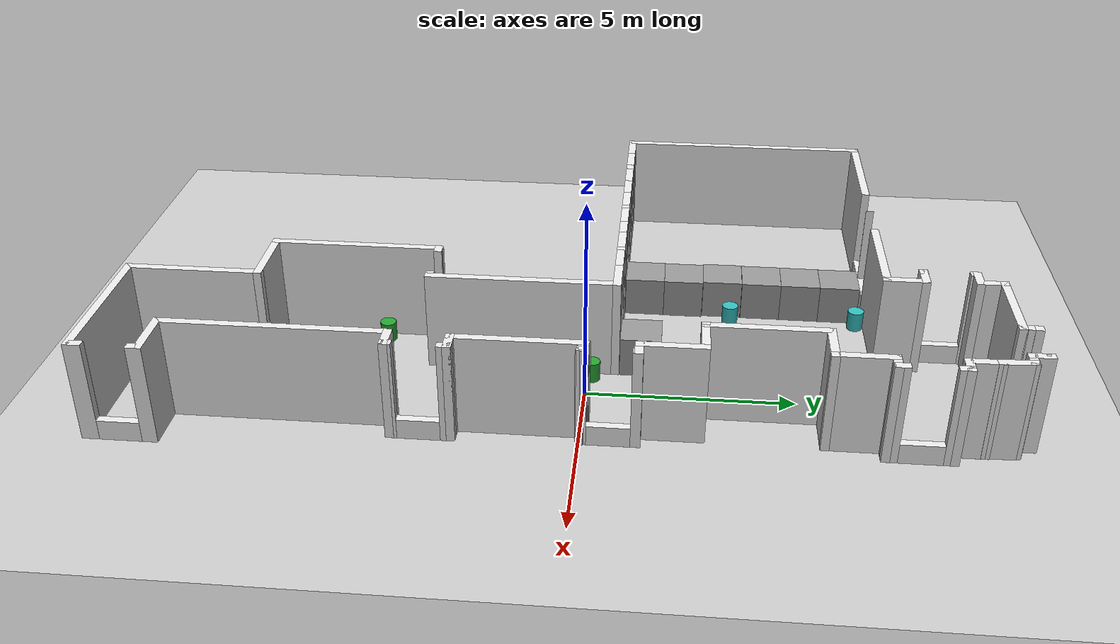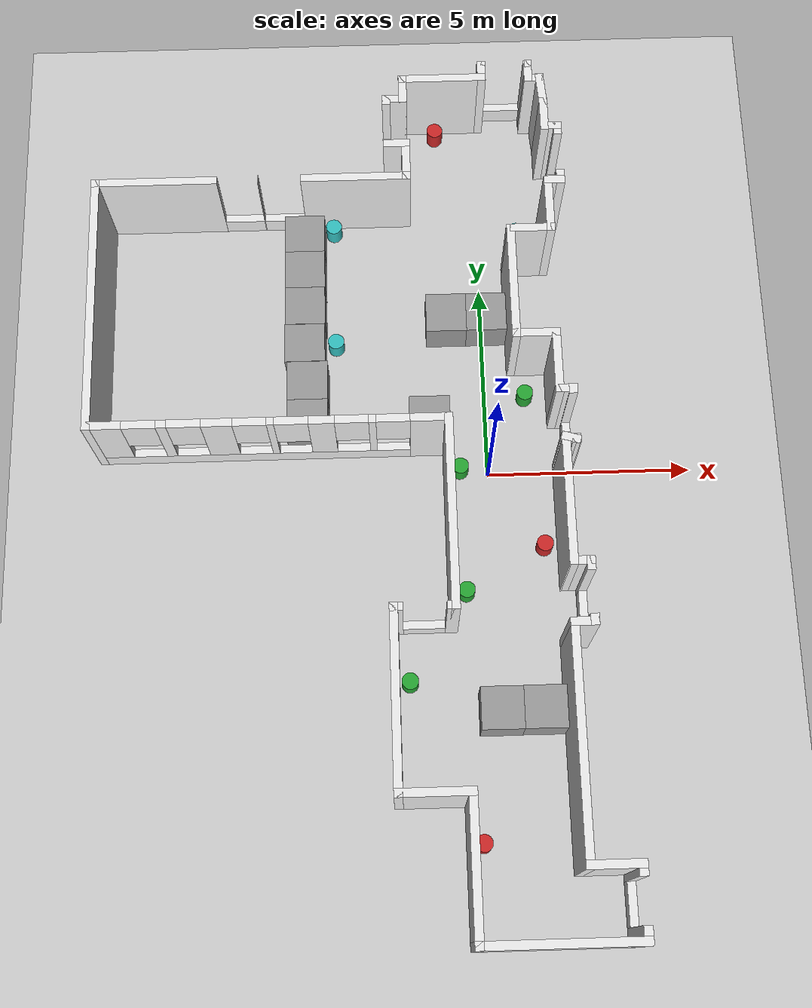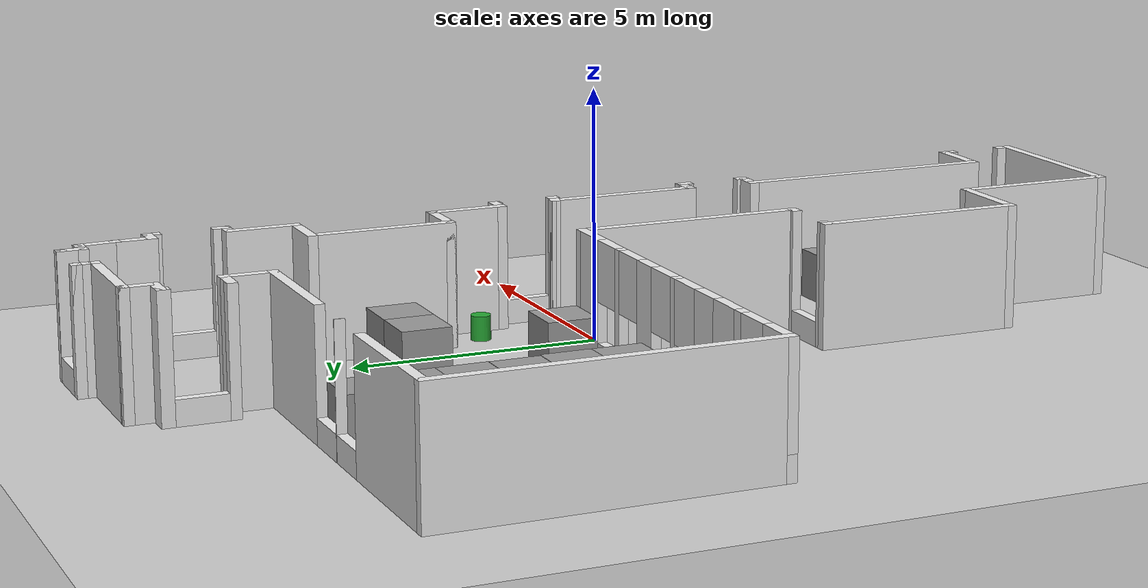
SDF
<sdf version="1.4">
 <world name="default">
  <light name="sun" type="directional">
   <pose>0 0 10 0 -0 0</pose>
   <diffuse>0.8 0.8 0.8 1</diffuse>
   <specular>0.2 0.2 0.2 1</specular>
   <attenuation>
    <range>1000</range>
    <constant>0.9</constant>
    <linear>0.01</linear>
    <quadratic>0.001</quadratic>
   </attenuation>
   <direction>-0.5 0.1 -0.9</direction>
  </light>
  <model name="ground_plane">
   <static>1</static>
   <link name="link">
    <collision name="collision">
     <geometry><plane><normal>0 0 1</normal><size>100 100</size></plane></geometry>
     <surface><friction><ode><mu>100</mu><mu2>50</mu2></ode></friction></surface>
    </collision>
    <visual name="visual">
     <cast_shadows>0</cast_shadows>
     <geometry><plane><normal>0 0 1</normal><size>100 100</size></plane></geometry>
     <material>
      <script><uri>file://media/materials/scripts/gazebo.material</uri><name>Gazebo/Grey</name></script>
     </material>
    </visual>
    <velocity_decay><linear>0</linear><angular>0</angular></velocity_decay>
   </link>
  </model>
  <model name="scene2">
   <pose>0.10113 -0.00426 0 0 -0 0</pose>
   <link name="Wall_18">
    <collision name="Wall_18_Collision">
     <geometry><box><size>0.903575 0.2 2.5</size></box></geometry>
     <pose>0 0 1.25 0 -0 0</pose>
    </collision>
    <visual name="Wall_18_Visual">
     <pose>0 0 1.25 0 -0 0</pose>
     <geometry><box><size>0.903575 0.2 2.5</size></box></geometry>
     <material>
      <script><uri>file://media/materials/scripts/gazebo.material</uri><name>Gazebo/White</name></script>
     </material>
    </visual>
    <velocity_decay><linear>0</linear><angular>0</angular></velocity_decay>
    <pose>1.57666 8.69449 0 0 0 -1.5708</pose>
   </link>
   <link name="Wall_19">
    <collision name="Wall_19_Collision">
     <geometry><box><size>0.516609 0.2 2.5</size></box></geometry>
     <pose>0 0 1.25 0 -0 0</pose>
    </collision>
    <visual name="Wall_19_Visual">
     <pose>0 0 1.25 0 -0 0</pose>
     <geometry><box><size>0.516609 0.2 2.5</size></box></geometry>
     <material>
      <script><uri>file://media/materials/scripts/gazebo.material</uri><name>Gazebo/White</name></script>
     </material>
    </visual>
    <velocity_decay><linear>0</linear><angular>0</angular></velocity_decay>
    <pose>1.73497 8.34271 0 0 -0 0</pose>
   </link>
   <link name="Wall_20">
    <pose>1.89327 7.58636 0 0 0 -1.5708</pose>
    <visual name="Wall_20_Visual_0">
     <pose>-0.68138 0 1.25 0 -0 0</pose>
     <geometry><box><size>0.34993 0.2 2.5</size></box></geometry>
     <material>
      <script><uri>file://media/materials/scripts/gazebo.material</uri><name>Gazebo/White</name></script>
     </material>
    </visual>
    <collision name="Wall_20_Collision_0">
     <geometry><box><size>0.34993 0.2 2.5</size></box></geometry>
     <pose>-0.68138 0 1.25 0 -0 0</pose>
    </collision>
    <visual name="Wall_20_Visual_1">
     <pose>0.674965 0 1.25 0 -0 0</pose>
     <geometry><box><size>0.36276 0.2 2.5</size></box></geometry>
     <material>
      <script><uri>file://media/materials/scripts/gazebo.material</uri><name>Gazebo/White</name></script>
     </material>
    </visual>
    <collision name="Wall_20_Collision_1">
     <geometry><box><size>0.36276 0.2 2.5</size></box></geometry>
     <pose>0.674965 0 1.25 0 -0 0</pose>
    </collision>
    <visual name="Wall_20_Visual_2">
     <pose>-0.006415 0 0.25 0 -0 0</pose>
     <geometry><box><size>1 0.2 0.5</size></box></geometry>
     <material>
      <script><uri>file://media/materials/scripts/gazebo.material</uri><name>Gazebo/White</name></script>
     </material>
    </visual>
    <collision name="Wall_20_Collision_2">
     <geometry><box><size>1 0.2 0.5</size></box></geometry>
     <pose>-0.006415 0 0.25 0 -0 0</pose>
    </collision>
    <velocity_decay><linear>0</linear><angular>0</angular></velocity_decay>
   </link>
   <link name="Wall_21">
    <collision name="Wall_21_Collision">
     <geometry><box><size>0.516609 0.2 2.5</size></box></geometry>
     <pose>0 0 1.25 0 -0 0</pose>
    </collision>
    <visual name="Wall_21_Visual">
     <pose>0 0 1.25 0 -0 0</pose>
     <geometry><box><size>0.516609 0.2 2.5</size></box></geometry>
     <material>
      <script><uri>file://media/materials/scripts/gazebo.material</uri><name>Gazebo/White</name></script>
     </material>
    </visual>
    <velocity_decay><linear>0</linear><angular>0</angular></velocity_decay>
    <pose>1.73497 6.83002 0 0 -0 3.14159</pose>
   </link>
   <link name="Wall_22">
    <collision name="Wall_22_Collision">
     <geometry><box><size>1.50161 0.2 2.5</size></box></geometry>
     <pose>0 0 1.25 0 -0 0</pose>
    </collision>
    <visual name="Wall_22_Visual">
     <pose>0 0 1.25 0 -0 0</pose>
     <geometry><box><size>1.50161 0.2 2.5</size></box></geometry>
     <material>
      <script><uri>file://media/materials/scripts/gazebo.material</uri><name>Gazebo/White</name></script>
     </material>
    </visual>
    <velocity_decay><linear>0</linear><angular>0</angular></velocity_decay>
    <pose>1.57666 6.17921 0 0 0 -1.5708</pose>
   </link>
   <link name="Wall_23">
    <collision name="Wall_23_Collision">
     <geometry><box><size>1.18501 0.2 2.5</size></box></geometry>
     <pose>0 0 1.25 0 -0 0</pose>
    </collision>
    <visual name="Wall_23_Visual">
     <pose>0 0 1.25 0 -0 0</pose>
     <geometry><box><size>1.18501 0.2 2.5</size></box></geometry>
     <material>
      <script><uri>file://media/materials/scripts/gazebo.material</uri><name>Gazebo/White</name></script>
     </material>
    </visual>
    <velocity_decay><linear>0</linear><angular>0</angular></velocity_decay>
    <pose>1.08416 5.52841 0 0 -0 3.14159</pose>
   </link>
   <link name="Wall_24">
    <collision name="Wall_24_Collision">
     <geometry><box><size>2.97912 0.2 2.5</size></box></geometry>
     <pose>0 0 1.25 0 -0 0</pose>
    </collision>
    <visual name="Wall_24_Visual">
     <pose>0 0 1.25 0 -0 0</pose>
     <geometry><box><size>2.97912 0.2 2.5</size></box></geometry>
     <material>
      <script><uri>file://media/materials/scripts/gazebo.material</uri><name>Gazebo/White</name></script>
     </material>
    </visual>
    <velocity_decay><linear>0</linear><angular>0</angular></velocity_decay>
    <pose>0.591659 4.13884 0 0 0 -1.5708</pose>
   </link>
   <link name="Wall_25">
    <collision name="Wall_25_Collision">
     <geometry><box><size>1.14983 0.2 2.5</size></box></geometry>
     <pose>0 0 1.25 0 -0 0</pose>
    </collision>
    <visual name="Wall_25_Visual">
     <pose>0 0 1.25 0 -0 0</pose>
     <geometry><box><size>1.14983 0.2 2.5</size></box></geometry>
     <material>
      <script><uri>file://media/materials/scripts/gazebo.material</uri><name>Gazebo/White</name></script>
     </material>
    </visual>
    <velocity_decay><linear>0</linear><angular>0</angular></velocity_decay>
    <pose>1.06657 2.74928 0 0 -0 0</pose>
   </link>
   <link name="Wall_26">
    <collision name="Wall_26_Collision">
     <geometry><box><size>1.64233 0.2 2.5</size></box></geometry>
     <pose>0 0 1.25 0 -0 0</pose>
    </collision>
    <visual name="Wall_26_Visual">
     <pose>0 0 1.25 0 -0 0</pose>
     <geometry><box><size>1.64233 0.2 2.5</size></box></geometry>
     <material>
      <script><uri>file://media/materials/scripts/gazebo.material</uri><name>Gazebo/White</name></script>
     </material>
    </visual>
    <velocity_decay><linear>0</linear><angular>0</angular></velocity_decay>
    <pose>1.54149 2.02812 0 0 0 -1.5708</pose>
   </link>
   <link name="Wall_27">
    <collision name="Wall_27_Collision">
     <geometry><box><size>0.516609 0.2 2.5</size></box></geometry>
     <pose>0 0 1.25 0 -0 0</pose>
    </collision>
    <visual name="Wall_27_Visual">
     <pose>0 0 1.25 0 -0 0</pose>
     <geometry><box><size>0.516609 0.2 2.5</size></box></geometry>
     <material>
      <script><uri>file://media/materials/scripts/gazebo.material</uri><name>Gazebo/White</name></script>
     </material>
    </visual>
    <velocity_decay><linear>0</linear><angular>0</angular></velocity_decay>
    <pose>1.69979 1.30696 0 0 -0 0</pose>
   </link>
   <link name="Wall_28">
    <pose>1.8581 0.673737 0 0 0 -1.5708</pose>
    <visual name="Wall_28_Visual_0">
     <pose>-0.617177 0 1.25 0 -0 0</pose>
     <geometry><box><size>0.232077 0.2 2.5</size></box></geometry>
     <material>
      <script><uri>file://media/materials/scripts/gazebo.material</uri><name>Gazebo/White</name></script>
     </material>
    </visual>
    <collision name="Wall_28_Collision_0">
     <geometry><box><size>0.232077 0.2 2.5</size></box></geometry>
     <pose>-0.617177 0 1.25 0 -0 0</pose>
    </collision>
    <visual name="Wall_28_Visual_1">
     <pose>0.616038 0 1.25 0 -0 0</pose>
     <geometry><box><size>0.234353 0.2 2.5</size></box></geometry>
     <material>
      <script><uri>file://media/materials/scripts/gazebo.material</uri><name>Gazebo/White</name></script>
     </material>
    </visual>
    <collision name="Wall_28_Collision_1">
     <geometry><box><size>0.234353 0.2 2.5</size></box></geometry>
     <pose>0.616038 0 1.25 0 -0 0</pose>
    </collision>
    <visual name="Wall_28_Visual_2">
     <pose>-0.001138 0 0.25 0 -0 0</pose>
     <geometry><box><size>1 0.2 0.5</size></box></geometry>
     <material>
      <script><uri>file://media/materials/scripts/gazebo.material</uri><name>Gazebo/White</name></script>
     </material>
    </visual>
    <collision name="Wall_28_Collision_2">
     <geometry><box><size>1 0.2 0.5</size></box></geometry>
     <pose>-0.001138 0 0.25 0 -0 0</pose>
    </collision>
    <velocity_decay><linear>0</linear><angular>0</angular></velocity_decay>
   </link>
   <link name="Wall_29">
    <collision name="Wall_29_Collision">
     <geometry><box><size>0.456105 0.2 2.5</size></box></geometry>
     <pose>0 0 1.25 0 -0 0</pose>
    </collision>
    <visual name="Wall_29_Visual">
     <pose>0 0 1.25 0 -0 0</pose>
     <geometry><box><size>0.456105 0.2 2.5</size></box></geometry>
     <material>
      <script><uri>file://media/materials/scripts/gazebo.material</uri><name>Gazebo/White</name></script>
     </material>
    </visual>
    <velocity_decay><linear>0</linear><angular>0</angular></velocity_decay>
    <pose>1.73497 0.075698 0 0 -0 2.86329</pose>
   </link>
   <link name="Wall_30">
    <collision name="Wall_30_Collision">
     <geometry><box><size>3.1902 0.2 2.5</size></box></geometry>
     <pose>0 0 1.25 0 -0 0</pose>
    </collision>
    <visual name="Wall_30_Visual">
     <pose>0 0 1.25 0 -0 0</pose>
     <geometry><box><size>3.1902 0.2 2.5</size></box></geometry>
     <material>
      <script><uri>file://media/materials/scripts/gazebo.material</uri><name>Gazebo/White</name></script>
     </material>
    </visual>
    <velocity_decay><linear>0</linear><angular>0</angular></velocity_decay>
    <pose>1.61184 -1.38422 0 0 0 -1.5708</pose>
   </link>
   <link name="Wall_31">
    <collision name="Wall_31_Collision">
     <geometry><box><size>0.586966 0.2 2.5</size></box></geometry>
     <pose>0 0 1.25 0 -0 0</pose>
    </collision>
    <visual name="Wall_31_Visual">
     <pose>0 0 1.25 0 -0 0</pose>
     <geometry><box><size>0.586966 0.2 2.5</size></box></geometry>
     <material>
      <script><uri>file://media/materials/scripts/gazebo.material</uri><name>Gazebo/White</name></script>
     </material>
    </visual>
    <velocity_decay><linear>0</linear><angular>0</angular></velocity_decay>
    <pose>1.80533 -2.87932 0 0 -0 0</pose>
   </link>
   <link name="Wall_32">
    <pose>1.99881 -3.58289 0 0 0 -1.5708</pose>
    <visual name="Wall_32_Visual_0">
     <pose>-0.636526 0 1.25 0 -0 0</pose>
     <geometry><box><size>0.334098 0.2 2.5</size></box></geometry>
     <material>
      <script><uri>file://media/materials/scripts/gazebo.material</uri><name>Gazebo/White</name></script>
     </material>
    </visual>
    <collision name="Wall_32_Collision_0">
     <geometry><box><size>0.334098 0.2 2.5</size></box></geometry>
     <pose>-0.636526 0 1.25 0 -0 0</pose>
    </collision>
    <visual name="Wall_32_Visual_1">
     <pose>0.667049 0 1.25 0 -0 0</pose>
     <geometry><box><size>0.273052 0.2 2.5</size></box></geometry>
     <material>
      <script><uri>file://media/materials/scripts/gazebo.material</uri><name>Gazebo/White</name></script>
     </material>
    </visual>
    <collision name="Wall_32_Collision_1">
     <geometry><box><size>0.273052 0.2 2.5</size></box></geometry>
     <pose>0.667049 0 1.25 0 -0 0</pose>
    </collision>
    <visual name="Wall_32_Visual_2">
     <pose>0.030523 0 0.25 0 -0 0</pose>
     <geometry><box><size>1 0.2 0.5</size></box></geometry>
     <material>
      <script><uri>file://media/materials/scripts/gazebo.material</uri><name>Gazebo/White</name></script>
     </material>
    </visual>
    <collision name="Wall_32_Collision_2">
     <geometry><box><size>1 0.2 0.5</size></box></geometry>
     <pose>0.030523 0 0.25 0 -0 0</pose>
    </collision>
    <velocity_decay><linear>0</linear><angular>0</angular></velocity_decay>
   </link>
   <link name="Wall_33">
    <collision name="Wall_33_Collision">
     <geometry><box><size>0.657324 0.2 2.5</size></box></geometry>
     <pose>0 0 1.25 0 -0 0</pose>
    </collision>
    <visual name="Wall_33_Visual">
     <pose>0 0 1.25 0 -0 0</pose>
     <geometry><box><size>0.657324 0.2 2.5</size></box></geometry>
     <material>
      <script><uri>file://media/materials/scripts/gazebo.material</uri><name>Gazebo/White</name></script>
     </material>
    </visual>
    <velocity_decay><linear>0</linear><angular>0</angular></velocity_decay>
    <pose>1.77015 -4.28647 0 0 -0 3.14159</pose>
   </link>
   <link name="Wall_34">
    <collision name="Wall_34_Collision">
     <geometry><box><size>5.47681 0.2 2.5</size></box></geometry>
     <pose>0 0 1.25 0 -0 0</pose>
    </collision>
    <visual name="Wall_34_Visual">
     <pose>0 0 1.25 0 -0 0</pose>
     <geometry><box><size>5.47681 0.2 2.5</size></box></geometry>
     <material>
      <script><uri>file://media/materials/scripts/gazebo.material</uri><name>Gazebo/White</name></script>
     </material>
    </visual>
    <velocity_decay><linear>0</linear><angular>0</angular></velocity_decay>
    <pose>1.54149 -6.92488 0 0 0 -1.5708</pose>
   </link>
   <link name="Wall_35">
    <collision name="Wall_35_Collision">
     <geometry><box><size>1.32572 0.2 2.5</size></box></geometry>
     <pose>0 0 1.25 0 -0 0</pose>
    </collision>
    <visual name="Wall_35_Visual">
     <pose>0 0 1.25 0 -0 0</pose>
     <geometry><box><size>1.32572 0.2 2.5</size></box></geometry>
     <material>
      <script><uri>file://media/materials/scripts/gazebo.material</uri><name>Gazebo/White</name></script>
     </material>
    </visual>
    <velocity_decay><linear>0</linear><angular>0</angular></velocity_decay>
    <pose>2.10435 -9.56328 0 0 -0 0</pose>
   </link>
   <link name="Wall_36">
    <pose>2.66721 -10.3548 0 0 0 -1.5708</pose>
    <visual name="Wall_36_Visual_0">
     <pose>-0.708642 0 1.25 0 -0 0</pose>
     <geometry><box><size>0.365756 0.2 2.5</size></box></geometry>
     <material>
      <script><uri>file://media/materials/scripts/gazebo.material</uri><name>Gazebo/White</name></script>
     </material>
    </visual>
    <collision name="Wall_36_Collision_0">
     <geometry><box><size>0.365756 0.2 2.5</size></box></geometry>
     <pose>-0.708642 0 1.25 0 -0 0</pose>
    </collision>
    <visual name="Wall_36_Visual_1">
     <pose>0.682878 0 1.25 0 -0 0</pose>
     <geometry><box><size>0.417284 0.2 2.5</size></box></geometry>
     <material>
      <script><uri>file://media/materials/scripts/gazebo.material</uri><name>Gazebo/White</name></script>
     </material>
    </visual>
    <collision name="Wall_36_Collision_1">
     <geometry><box><size>0.417284 0.2 2.5</size></box></geometry>
     <pose>0.682878 0 1.25 0 -0 0</pose>
    </collision>
    <visual name="Wall_36_Visual_2">
     <pose>-0.025764 0 0.25 0 -0 0</pose>
     <geometry><box><size>1 0.2 0.5</size></box></geometry>
     <material>
      <script><uri>file://media/materials/scripts/gazebo.material</uri><name>Gazebo/White</name></script>
     </material>
    </visual>
    <collision name="Wall_36_Collision_2">
     <geometry><box><size>1 0.2 0.5</size></box></geometry>
     <pose>-0.025764 0 0.25 0 -0 0</pose>
    </collision>
    <velocity_decay><linear>0</linear><angular>0</angular></velocity_decay>
   </link>
   <link name="Wall_37">
    <collision name="Wall_37_Collision">
     <geometry><box><size>3.75305 0.2 2.5</size></box></geometry>
     <pose>0 0 1.25 0 -0 0</pose>
    </collision>
    <visual name="Wall_37_Visual">
     <pose>0 0 1.25 0 -0 0</pose>
     <geometry><box><size>3.75305 0.2 2.5</size></box></geometry>
     <material>
      <script><uri>file://media/materials/scripts/gazebo.material</uri><name>Gazebo/White</name></script>
     </material>
    </visual>
    <velocity_decay><linear>0</linear><angular>0</angular></velocity_decay>
    <pose>0.890679 -11.1463 0 0 -0 3.14159</pose>
   </link>
   <link name="Wall_38">
    <collision name="Wall_38_Collision">
     <geometry><box><size>3.40127 0.2 2.5</size></box></geometry>
     <pose>0 0 1.25 0 -0 0</pose>
    </collision>
    <visual name="Wall_38_Visual">
     <pose>0 0 1.25 0 -0 0</pose>
     <geometry><box><size>3.40127 0.2 2.5</size></box></geometry>
     <material>
      <script><uri>file://media/materials/scripts/gazebo.material</uri><name>Gazebo/White</name></script>
     </material>
    </visual>
    <velocity_decay><linear>0</linear><angular>0</angular></velocity_decay>
    <pose>-0.885849 -9.54569 0 0 -0 1.5708</pose>
   </link>
   <link name="Wall_39">
    <collision name="Wall_39_Collision">
     <geometry><box><size>1.81822 0.2 2.5</size></box></geometry>
     <pose>0 0 1.25 0 -0 0</pose>
    </collision>
    <visual name="Wall_39_Visual">
     <pose>0 0 1.25 0 -0 0</pose>
     <geometry><box><size>1.81822 0.2 2.5</size></box></geometry>
     <material>
      <script><uri>file://media/materials/scripts/gazebo.material</uri><name>Gazebo/White</name></script>
     </material>
    </visual>
    <velocity_decay><linear>0</linear><angular>0</angular></velocity_decay>
    <pose>-1.69496 -7.94506 0 0 -0 3.14159</pose>
   </link>
   <link name="Wall_40">
    <collision name="Wall_40_Collision">
     <geometry><box><size>4.31592 0.2 2.5</size></box></geometry>
     <pose>0 0 1.25 0 -0 0</pose>
    </collision>
    <visual name="Wall_40_Visual">
     <pose>0 0 1.25 0 -0 0</pose>
     <geometry><box><size>4.31592 0.2 2.5</size></box></geometry>
     <material>
      <script><uri>file://media/materials/scripts/gazebo.material</uri><name>Gazebo/White</name></script>
     </material>
    </visual>
    <velocity_decay><linear>0</linear><angular>0</angular></velocity_decay>
    <pose>-2.50407 -5.8871 0 0 -0 1.5708</pose>
   </link>
   <link name="Wall_41">
    <pose>-1.8005 -3.82914 0 0 -0 0</pose>
    <visual name="Wall_41_Visual_0">
     <pose>-0.64898 0 1.25 0 -0 0</pose>
     <geometry><box><size>0.30919 0.2 2.5</size></box></geometry>
     <material>
      <script><uri>file://media/materials/scripts/gazebo.material</uri><name>Gazebo/White</name></script>
     </material>
    </visual>
    <collision name="Wall_41_Collision_0">
     <geometry><box><size>0.30919 0.2 2.5</size></box></geometry>
     <pose>-0.64898 0 1.25 0 -0 0</pose>
    </collision>
    <visual name="Wall_41_Visual_1">
     <pose>0.654595 0 1.25 0 -0 0</pose>
     <geometry><box><size>0.29796 0.2 2.5</size></box></geometry>
     <material>
      <script><uri>file://media/materials/scripts/gazebo.material</uri><name>Gazebo/White</name></script>
     </material>
    </visual>
    <collision name="Wall_41_Collision_1">
     <geometry><box><size>0.29796 0.2 2.5</size></box></geometry>
     <pose>0.654595 0 1.25 0 -0 0</pose>
    </collision>
    <visual name="Wall_41_Visual_2">
     <pose>0.005615 0 0.25 0 -0 0</pose>
     <geometry><box><size>1 0.2 0.5</size></box></geometry>
     <material>
      <script><uri>file://media/materials/scripts/gazebo.material</uri><name>Gazebo/White</name></script>
     </material>
    </visual>
    <collision name="Wall_41_Collision_2">
     <geometry><box><size>1 0.2 0.5</size></box></geometry>
     <pose>0.005615 0 0.25 0 -0 0</pose>
    </collision>
    <velocity_decay><linear>0</linear><angular>0</angular></velocity_decay>
   </link>
   <link name="Wall_42">
    <collision name="Wall_42_Collision">
     <geometry><box><size>4.70288 0.2 2.5</size></box></geometry>
     <pose>0 0 1.25 0 -0 0</pose>
    </collision>
    <visual name="Wall_42_Visual">
     <pose>0 0 1.25 0 -0 0</pose>
     <geometry><box><size>4.70288 0.2 2.5</size></box></geometry>
     <material>
      <script><uri>file://media/materials/scripts/gazebo.material</uri><name>Gazebo/White</name></script>
     </material>
    </visual>
    <velocity_decay><linear>0</linear><angular>0</angular></velocity_decay>
    <pose>-1.09692 -1.5777 0 0 -0 1.5708</pose>
   </link>
   <link name="Wall_43">
    <pose>-5.33596 0.673737 0 0 -0 3.14159</pose>
    <visual name="Wall_43_Visual_0">
     <pose>-3.83664 0 1.25 0 -0 0</pose>
     <geometry><box><size>1.00479 0.2 2.5</size></box></geometry>
     <material>
      <script><uri>file://media/materials/scripts/gazebo.material</uri><name>Gazebo/White</name></script>
     </material>
    </visual>
    <collision name="Wall_43_Collision_0">
     <geometry><box><size>1.00479 0.2 2.5</size></box></geometry>
     <pose>-3.83664 0 1.25 0 -0 0</pose>
    </collision>
    <visual name="Wall_43_Visual_1">
     <pose>0.502397 0 0.25 0 -0 0</pose>
     <geometry><box><size>7.67329 0.2 0.5</size></box></geometry>
     <material>
      <script><uri>file://media/materials/scripts/gazebo.material</uri><name>Gazebo/White</name></script>
     </material>
    </visual>
    <collision name="Wall_43_Collision_1">
     <geometry><box><size>7.67329 0.2 0.5</size></box></geometry>
     <pose>0.502397 0 0.25 0 -0 0</pose>
    </collision>
    <visual name="Wall_43_Visual_2">
     <pose>-2.44878 0 1.5 0 -0 0</pose>
     <geometry><box><size>0.170934 0.2 2</size></box></geometry>
     <material>
      <script><uri>file://media/materials/scripts/gazebo.material</uri><name>Gazebo/White</name></script>
     </material>
    </visual>
    <collision name="Wall_43_Collision_2">
     <geometry><box><size>0.170934 0.2 2</size></box></geometry>
     <pose>-2.44878 0 1.5 0 -0 0</pose>
    </collision>
    <visual name="Wall_43_Visual_3">
     <pose>-1.25534 0 1.5 0 -0 0</pose>
     <geometry><box><size>0.615945 0.2 2</size></box></geometry>
     <material>
      <script><uri>file://media/materials/scripts/gazebo.material</uri><name>Gazebo/White</name></script>
     </material>
    </visual>
    <collision name="Wall_43_Collision_3">
     <geometry><box><size>0.615945 0.2 2</size></box></geometry>
     <pose>-1.25534 0 1.5 0 -0 0</pose>
    </collision>
    <visual name="Wall_43_Visual_4">
     <pose>-0.061901 0 1.5 0 -0 0</pose>
     <geometry><box><size>0.170934 0.2 2</size></box></geometry>
     <material>
      <script><uri>file://media/materials/scripts/gazebo.material</uri><name>Gazebo/White</name></script>
     </material>
    </visual>
    <collision name="Wall_43_Collision_4">
     <geometry><box><size>0.170934 0.2 2</size></box></geometry>
     <pose>-0.061901 0 1.5 0 -0 0</pose>
    </collision>
    <visual name="Wall_43_Visual_5">
     <pose>1.19222 0 1.5 0 -0 0</pose>
     <geometry><box><size>0.737312 0.2 2</size></box></geometry>
     <material>
      <script><uri>file://media/materials/scripts/gazebo.material</uri><name>Gazebo/White</name></script>
     </material>
    </visual>
    <collision name="Wall_43_Collision_5">
     <geometry><box><size>0.737312 0.2 2</size></box></geometry>
     <pose>1.19222 0 1.5 0 -0 0</pose>
    </collision>
    <visual name="Wall_43_Visual_6">
     <pose>2.4868 0 1.5 0 -0 0</pose>
     <geometry><box><size>0.251845 0.2 2</size></box></geometry>
     <material>
      <script><uri>file://media/materials/scripts/gazebo.material</uri><name>Gazebo/White</name></script>
     </material>
    </visual>
    <collision name="Wall_43_Collision_6">
     <geometry><box><size>0.251845 0.2 2</size></box></geometry>
     <pose>2.4868 0 1.5 0 -0 0</pose>
    </collision>
    <visual name="Wall_43_Visual_7">
     <pose>3.87588 0 1.5 0 -0 0</pose>
     <geometry><box><size>0.926317 0.2 2</size></box></geometry>
     <material>
      <script><uri>file://media/materials/scripts/gazebo.material</uri><name>Gazebo/White</name></script>
     </material>
    </visual>
    <collision name="Wall_43_Collision_7">
     <geometry><box><size>0.926317 0.2 2</size></box></geometry>
     <pose>3.87588 0 1.5 0 -0 0</pose>
    </collision>
    <visual name="Wall_43_Visual_8">
     <pose>-2.93425 0 1.9 0 -0 0</pose>
     <geometry><box><size>0.8 0.2 1.2</size></box></geometry>
     <material>
      <script><uri>file://media/materials/scripts/gazebo.material</uri><name>Gazebo/White</name></script>
     </material>
    </visual>
    <collision name="Wall_43_Collision_8">
     <geometry><box><size>0.8 0.2 1.2</size></box></geometry>
     <pose>-2.93425 0 1.9 0 -0 0</pose>
    </collision>
    <visual name="Wall_43_Visual_9">
     <pose>-1.96331 0 1.9 0 -0 0</pose>
     <geometry><box><size>0.8 0.2 1.2</size></box></geometry>
     <material>
      <script><uri>file://media/materials/scripts/gazebo.material</uri><name>Gazebo/White</name></script>
     </material>
    </visual>
    <collision name="Wall_43_Collision_9">
     <geometry><box><size>0.8 0.2 1.2</size></box></geometry>
     <pose>-1.96331 0 1.9 0 -0 0</pose>
    </collision>
    <visual name="Wall_43_Visual_10">
     <pose>-0.547368 0 1.9 0 -0 0</pose>
     <geometry><box><size>0.8 0.2 1.2</size></box></geometry>
     <material>
      <script><uri>file://media/materials/scripts/gazebo.material</uri><name>Gazebo/White</name></script>
     </material>
    </visual>
    <collision name="Wall_43_Collision_10">
     <geometry><box><size>0.8 0.2 1.2</size></box></geometry>
     <pose>-0.547368 0 1.9 0 -0 0</pose>
    </collision>
    <visual name="Wall_43_Visual_11">
     <pose>0.423566 0 1.9 0 -0 0</pose>
     <geometry><box><size>0.8 0.2 1.2</size></box></geometry>
     <material>
      <script><uri>file://media/materials/scripts/gazebo.material</uri><name>Gazebo/White</name></script>
     </material>
    </visual>
    <collision name="Wall_43_Collision_11">
     <geometry><box><size>0.8 0.2 1.2</size></box></geometry>
     <pose>0.423566 0 1.9 0 -0 0</pose>
    </collision>
    <visual name="Wall_43_Visual_12">
     <pose>1.96088 0 1.9 0 -0 0</pose>
     <geometry><box><size>0.8 0.2 1.2</size></box></geometry>
     <material>
      <script><uri>file://media/materials/scripts/gazebo.material</uri><name>Gazebo/White</name></script>
     </material>
    </visual>
    <collision name="Wall_43_Collision_12">
     <geometry><box><size>0.8 0.2 1.2</size></box></geometry>
     <pose>1.96088 0 1.9 0 -0 0</pose>
    </collision>
    <visual name="Wall_43_Visual_13">
     <pose>3.01272 0 1.9 0 -0 0</pose>
     <geometry><box><size>0.8 0.2 1.2</size></box></geometry>
     <material>
      <script><uri>file://media/materials/scripts/gazebo.material</uri><name>Gazebo/White</name></script>
     </material>
    </visual>
    <collision name="Wall_43_Collision_13">
     <geometry><box><size>0.8 0.2 1.2</size></box></geometry>
     <pose>3.01272 0 1.9 0 -0 0</pose>
    </collision>
    <velocity_decay><linear>0</linear><angular>0</angular></velocity_decay>
   </link>
   <link name="Wall_44">
    <collision name="Wall_44_Collision">
     <geometry><box><size>6.56736 0.2 2.5</size></box></geometry>
     <pose>0 0 1.25 0 -0 0</pose>
    </collision>
    <visual name="Wall_44_Visual">
     <pose>0 0 1.25 0 -0 0</pose>
     <geometry><box><size>6.56736 0.2 2.5</size></box></geometry>
     <material>
      <script><uri>file://media/materials/scripts/gazebo.material</uri><name>Gazebo/White</name></script>
     </material>
    </visual>
    <velocity_decay><linear>0</linear><angular>0</angular></velocity_decay>
    <pose>-9.575 3.85742 0 0 -0 1.5708</pose>
   </link>
   <link name="Wall_45">
    <pose>-5.74052 7.04109 0 0 -0 0</pose>
    <visual name="Wall_45_Visual_0">
     <pose>-2.38857 0 1.25 0 -0 0</pose>
     <geometry><box><size>3.09183 0.2 2.5</size></box></geometry>
     <material>
      <script><uri>file://media/materials/scripts/gazebo.material</uri><name>Gazebo/White</name></script>
     </material>
    </visual>
    <collision name="Wall_45_Collision_0">
     <geometry><box><size>3.09183 0.2 2.5</size></box></geometry>
     <pose>-2.38857 0 1.25 0 -0 0</pose>
    </collision>
    <visual name="Wall_45_Visual_1">
     <pose>0.166347 0 1.25 0 -0 0</pose>
     <geometry><box><size>0.018004 0.2 2.5</size></box></geometry>
     <material>
      <script><uri>file://media/materials/scripts/gazebo.material</uri><name>Gazebo/White</name></script>
     </material>
    </visual>
    <collision name="Wall_45_Collision_1">
     <geometry><box><size>0.018004 0.2 2.5</size></box></geometry>
     <pose>0.166347 0 1.25 0 -0 0</pose>
    </collision>
    <visual name="Wall_45_Visual_2">
     <pose>2.57475 0 1.25 0 -0 0</pose>
     <geometry><box><size>2.71947 0.2 2.5</size></box></geometry>
     <material>
      <script><uri>file://media/materials/scripts/gazebo.material</uri><name>Gazebo/White</name></script>
     </material>
    </visual>
    <collision name="Wall_45_Collision_2">
     <geometry><box><size>2.71947 0.2 2.5</size></box></geometry>
     <pose>2.57475 0 1.25 0 -0 0</pose>
    </collision>
    <visual name="Wall_45_Visual_3">
     <pose>-0.342655 0 0.25 0 -0 0</pose>
     <geometry><box><size>1 0.2 0.5</size></box></geometry>
     <material>
      <script><uri>file://media/materials/scripts/gazebo.material</uri><name>Gazebo/White</name></script>
     </material>
    </visual>
    <collision name="Wall_45_Collision_3">
     <geometry><box><size>1 0.2 0.5</size></box></geometry>
     <pose>-0.342655 0 0.25 0 -0 0</pose>
    </collision>
    <visual name="Wall_45_Visual_4">
     <pose>0.695184 0 0.25 0 -0 0</pose>
     <geometry><box><size>1.03967 0.2 0.5</size></box></geometry>
     <material>
      <script><uri>file://media/materials/scripts/gazebo.material</uri><name>Gazebo/White</name></script>
     </material>
    </visual>
    <collision name="Wall_45_Collision_4">
     <geometry><box><size>1.03967 0.2 0.5</size></box></geometry>
     <pose>0.695184 0 0.25 0 -0 0</pose>
    </collision>
    <velocity_decay><linear>0</linear><angular>0</angular></velocity_decay>
   </link>
   <link name="Wall_46">
    <collision name="Wall_46_Collision">
     <geometry><box><size>1.11465 0.2 2.5</size></box></geometry>
     <pose>0 0 1.25 0 -0 0</pose>
    </collision>
    <visual name="Wall_46_Visual">
     <pose>0 0 1.25 0 -0 0</pose>
     <geometry><box><size>1.11465 0.2 2.5</size></box></geometry>
     <material>
      <script><uri>file://media/materials/scripts/gazebo.material</uri><name>Gazebo/White</name></script>
     </material>
    </visual>
    <velocity_decay><linear>0</linear><angular>0</angular></velocity_decay>
    <pose>-1.90603 7.49842 0 0 -0 1.5708</pose>
   </link>
   <link name="Wall_47">
    <collision name="Wall_47_Collision">
     <geometry><box><size>0.657324 0.2 2.5</size></box></geometry>
     <pose>0 0 1.25 0 -0 0</pose>
    </collision>
    <visual name="Wall_47_Visual">
     <pose>0 0 1.25 0 -0 0</pose>
     <geometry><box><size>0.657324 0.2 2.5</size></box></geometry>
     <material>
      <script><uri>file://media/materials/scripts/gazebo.material</uri><name>Gazebo/White</name></script>
     </material>
    </visual>
    <velocity_decay><linear>0</linear><angular>0</angular></velocity_decay>
    <pose>-2.13469 7.95574 0 0 -0 3.14159</pose>
   </link>
   <link name="Wall_48">
    <pose>-2.36336 8.58896 0 0 -0 1.5708</pose>
    <visual name="Wall_48_Visual_0">
     <pose>-0.62923 0 1.25 0 -0 0</pose>
     <geometry><box><size>0.207969 0.2 2.5</size></box></geometry>
     <material>
      <script><uri>file://media/materials/scripts/gazebo.material</uri><name>Gazebo/White</name></script>
     </material>
    </visual>
    <collision name="Wall_48_Collision_0">
     <geometry><box><size>0.207969 0.2 2.5</size></box></geometry>
     <pose>-0.62923 0 1.25 0 -0 0</pose>
    </collision>
    <visual name="Wall_48_Visual_1">
     <pose>0.603985 0 1.25 0 -0 0</pose>
     <geometry><box><size>0.258461 0.2 2.5</size></box></geometry>
     <material>
      <script><uri>file://media/materials/scripts/gazebo.material</uri><name>Gazebo/White</name></script>
     </material>
    </visual>
    <collision name="Wall_48_Collision_1">
     <geometry><box><size>0.258461 0.2 2.5</size></box></geometry>
     <pose>0.603985 0 1.25 0 -0 0</pose>
    </collision>
    <visual name="Wall_48_Visual_2">
     <pose>-0.025246 0 0.25 0 -0 0</pose>
     <geometry><box><size>1 0.2 0.5</size></box></geometry>
     <material>
      <script><uri>file://media/materials/scripts/gazebo.material</uri><name>Gazebo/White</name></script>
     </material>
    </visual>
    <collision name="Wall_48_Collision_2">
     <geometry><box><size>1 0.2 0.5</size></box></geometry>
     <pose>-0.025246 0 0.25 0 -0 0</pose>
    </collision>
    <velocity_decay><linear>0</linear><angular>0</angular></velocity_decay>
   </link>
   <link name="Wall_49">
    <collision name="Wall_49_Collision">
     <geometry><box><size>0.622145 0.2 2.5</size></box></geometry>
     <pose>0 0 1.25 0 -0 0</pose>
    </collision>
    <visual name="Wall_49_Visual">
     <pose>0 0 1.25 0 -0 0</pose>
     <geometry><box><size>0.622145 0.2 2.5</size></box></geometry>
     <material>
      <script><uri>file://media/materials/scripts/gazebo.material</uri><name>Gazebo/White</name></script>
     </material>
    </visual>
    <velocity_decay><linear>0</linear><angular>0</angular></velocity_decay>
    <pose>-2.15228 9.22218 0 0 -0 0</pose>
   </link>
   <link name="Wall_50">
    <collision name="Wall_50_Collision">
     <geometry><box><size>0.76286 0.2 2.5</size></box></geometry>
     <pose>0 0 1.25 0 -0 0</pose>
    </collision>
    <visual name="Wall_50_Visual">
     <pose>0 0 1.25 0 -0 0</pose>
     <geometry><box><size>0.76286 0.2 2.5</size></box></geometry>
     <material>
      <script><uri>file://media/materials/scripts/gazebo.material</uri><name>Gazebo/White</name></script>
     </material>
    </visual>
    <velocity_decay><linear>0</linear><angular>0</angular></velocity_decay>
    <pose>-1.94121 9.50361 0 0 -0 1.5708</pose>
   </link>
   <link name="Wall_51">
    <collision name="Wall_51_Collision">
     <geometry><box><size>2.20519 0.2 2.5</size></box></geometry>
     <pose>0 0 1.25 0 -0 0</pose>
    </collision>
    <visual name="Wall_51_Visual">
     <pose>0 0 1.25 0 -0 0</pose>
     <geometry><box><size>2.20519 0.2 2.5</size></box></geometry>
     <material>
      <script><uri>file://media/materials/scripts/gazebo.material</uri><name>Gazebo/White</name></script>
     </material>
    </visual>
    <velocity_decay><linear>0</linear><angular>0</angular></velocity_decay>
    <pose>-0.938617 9.78504 0 0 -0 0</pose>
   </link>
   <link name="Wall_52">
    <collision name="Wall_52_Collision">
     <geometry><box><size>0.556444 0.2 2.5</size></box></geometry>
     <pose>0 0 1.25 0 -0 0</pose>
    </collision>
    <visual name="Wall_52_Visual">
     <pose>0 0 1.25 0 -0 0</pose>
     <geometry><box><size>0.556444 0.2 2.5</size></box></geometry>
     <material>
      <script><uri>file://media/materials/scripts/gazebo.material</uri><name>Gazebo/White</name></script>
     </material>
    </visual>
    <velocity_decay><linear>0</linear><angular>0</angular></velocity_decay>
    <pose>0.063978 9.96326 0 0 -0 1.5708</pose>
   </link>
   <link name="Wall_53">
    <pose>0.651632 10.1415 0 0 -0 0</pose>
    <visual name="Wall_53_Visual_0">
     <pose>-0.583189 0 1.25 0 -0 0</pose>
     <geometry><box><size>0.208931 0.2 2.5</size></box></geometry>
     <material>
      <script><uri>file://media/materials/scripts/gazebo.material</uri><name>Gazebo/White</name></script>
     </material>
    </visual>
    <collision name="Wall_53_Collision_0">
     <geometry><box><size>0.208931 0.2 2.5</size></box></geometry>
     <pose>-0.583189 0 1.25 0 -0 0</pose>
    </collision>
    <visual name="Wall_53_Visual_1">
     <pose>0.604466 0 1.25 0 -0 0</pose>
     <geometry><box><size>0.166379 0.2 2.5</size></box></geometry>
     <material>
      <script><uri>file://media/materials/scripts/gazebo.material</uri><name>Gazebo/White</name></script>
     </material>
    </visual>
    <collision name="Wall_53_Collision_1">
     <geometry><box><size>0.166379 0.2 2.5</size></box></geometry>
     <pose>0.604466 0 1.25 0 -0 0</pose>
    </collision>
    <visual name="Wall_53_Visual_2">
     <pose>0.021276 0 0.25 0 -0 0</pose>
     <geometry><box><size>1 0.2 0.5</size></box></geometry>
     <material>
      <script><uri>file://media/materials/scripts/gazebo.material</uri><name>Gazebo/White</name></script>
     </material>
    </visual>
    <collision name="Wall_53_Collision_2">
     <geometry><box><size>1 0.2 0.5</size></box></geometry>
     <pose>0.021276 0 0.25 0 -0 0</pose>
    </collision>
    <velocity_decay><linear>0</linear><angular>0</angular></velocity_decay>
   </link>
   <link name="Wall_54">
    <collision name="Wall_54_Collision">
     <geometry><box><size>0.604556 0.2 2.5</size></box></geometry>
     <pose>0 0 1.25 0 -0 0</pose>
    </collision>
    <visual name="Wall_54_Visual">
     <pose>0 0 1.25 0 -0 0</pose>
     <geometry><box><size>0.604556 0.2 2.5</size></box></geometry>
     <material>
      <script><uri>file://media/materials/scripts/gazebo.material</uri><name>Gazebo/White</name></script>
     </material>
    </visual>
    <velocity_decay><linear>0</linear><angular>0</angular></velocity_decay>
    <pose>1.23929 9.9392 0 0 0 -1.5708</pose>
   </link>
   <link name="Wall_55">
    <collision name="Wall_55_Collision">
     <geometry><box><size>0.483189 0.2 2.5</size></box></geometry>
     <pose>0 0 1.25 0 -0 0</pose>
    </collision>
    <visual name="Wall_55_Visual">
     <pose>0 0 1.25 0 -0 0</pose>
     <geometry><box><size>0.483189 0.2 2.5</size></box></geometry>
     <material>
      <script><uri>file://media/materials/scripts/gazebo.material</uri><name>Gazebo/White</name></script>
     </material>
    </visual>
    <velocity_decay><linear>0</linear><angular>0</angular></velocity_decay>
    <pose>1.38088 9.73692 0 0 -0 0</pose>
   </link>
   <link name="Wall_56">
    <collision name="Wall_56_Collision">
     <geometry><box><size>0.892764 0.2 2.5</size></box></geometry>
     <pose>0 0 1.25 0 -0 0</pose>
    </collision>
    <visual name="Wall_56_Visual">
     <pose>0 0 1.25 0 -0 0</pose>
     <geometry><box><size>0.892764 0.2 2.5</size></box></geometry>
     <material>
      <script><uri>file://media/materials/scripts/gazebo.material</uri><name>Gazebo/White</name></script>
     </material>
    </visual>
    <velocity_decay><linear>0</linear><angular>0</angular></velocity_decay>
    <pose>1.54957 9.3916 0 0 0 -1.49249</pose>
   </link>
   <static>1</static>
  </model>
  <model name="unit_cylinder_1">
   <pose>-0.674771 0.121427 0.249991 0 -0 0</pose>
   <link name="link">
    <inertial>
     <mass>1</mass>
     <inertia><ixx>1</ixx><ixy>0</ixy><ixz>0</ixz><iyy>1</iyy><iyz>0</iyz><izz>1</izz></inertia>
    </inertial>
    <collision name="collision">
     <geometry><cylinder><radius>0.2</radius><length>0.5</length></cylinder></geometry>
    </collision>
    <visual name="visual">
     <geometry><cylinder><radius>0.2</radius><length>0.5</length></cylinder></geometry>
     <material>
      <script><uri>file://media/materials/scripts/gazebo.material</uri><name>Gazebo/Green</name></script>
     </material>
    </visual>
    <velocity_decay><linear>0</linear><angular>0</angular></velocity_decay>
   </link>
   <static>0</static>
  </model>
  <model name="unit_cylinder_2">
   <pose>1 2 0.25 -0 -0 -0</pose>
   <link name="link">
    <inertial>
     <mass>1</mass>
     <inertia><ixx>1</ixx><ixy>0</ixy><ixz>0</ixz><iyy>1</iyy><iyz>0</iyz><izz>1</izz></inertia>
    </inertial>
    <collision name="collision">
     <geometry><cylinder><radius>0.2</radius><length>0.5</length></cylinder></geometry>
    </collision>
    <visual name="visual">
     <geometry><cylinder><radius>0.2</radius><length>0.5</length></cylinder></geometry>
     <material>
      <script><uri>file://media/materials/scripts/gazebo.material</uri><name>Gazebo/Green</name></script>
     </material>
    </visual>
    <velocity_decay><linear>0</linear><angular>0</angular></velocity_decay>
   </link>
   <static>0</static>
  </model>
  <model name="unit_cylinder_4">
   <pose>-0.642969 -3 0.24999 0 -0 0</pose>
   <link name="link">
    <inertial>
     <mass>1</mass>
     <inertia><ixx>1</ixx><ixy>0</ixy><ixz>0</ixz><iyy>1</iyy><iyz>0</iyz><izz>1</izz></inertia>
    </inertial>
    <collision name="collision">
     <geometry><cylinder><radius>0.2</radius><length>0.5</length></cylinder></geometry>
    </collision>
    <visual name="visual">
     <geometry><cylinder><radius>0.2</radius><length>0.5</length></cylinder></geometry>
     <material>
      <script><uri>file://media/materials/scripts/gazebo.material</uri><name>Gazebo/Green</name></script>
     </material>
    </visual>
    <velocity_decay><linear>0</linear><angular>0</angular></velocity_decay>
   </link>
   <static>0</static>
  </model>
  <model name="unit_cylinder_5">
   <pose>-2.05704 -5.16609 0.249999 0 -0 0</pose>
   <link name="link">
    <inertial>
     <mass>1</mass>
     <inertia><ixx>1</ixx><ixy>0</ixy><ixz>0</ixz><iyy>1</iyy><iyz>0</iyz><izz>1</izz></inertia>
    </inertial>
    <collision name="collision">
     <geometry><cylinder><radius>0.2</radius><length>0.5</length></cylinder></geometry>
    </collision>
    <visual name="visual">
     <geometry><cylinder><radius>0.2</radius><length>0.5</length></cylinder></geometry>
     <material>
      <script><uri>file://media/materials/scripts/gazebo.material</uri><name>Gazebo/Green</name></script>
     </material>
    </visual>
    <velocity_decay><linear>0</linear><angular>0</angular></velocity_decay>
   </link>
   <static>0</static>
  </model>
  <model name="unit_cylinder_9">
   <pose>1 6.5 0.25 -0 -0 -0</pose>
   <link name="link">
    <inertial>
     <mass>1</mass>
     <inertia><ixx>1</ixx><ixy>0</ixy><ixz>0</ixz><iyy>1</iyy><iyz>0</iyz><izz>1</izz></inertia>
    </inertial>
    <collision name="collision">
     <geometry><cylinder><radius>0.2</radius><length>0.5</length></cylinder></geometry>
    </collision>
    <visual name="visual">
     <geometry><cylinder><radius>0.2</radius><length>0.5</length></cylinder></geometry>
     <material>
      <script><uri>file://media/materials/scripts/gazebo.material</uri><name>Gazebo/Turquoise</name></script>
     </material>
    </visual>
    <velocity_decay><linear>0</linear><angular>0</angular></velocity_decay>
   </link>
   <static>0</static>
  </model>
  <model name="unit_cylinder_10">
   <pose>-3.69292 6.72468 0.249991 0 -0 -0.008106</pose>
   <link name="link">
    <inertial>
     <mass>1</mass>
     <inertia><ixx>1</ixx><ixy>0</ixy><ixz>0</ixz><iyy>1</iyy><iyz>0</iyz><izz>1</izz></inertia>
    </inertial>
    <collision name="collision">
     <geometry><cylinder><radius>0.2</radius><length>0.5</length></cylinder></geometry>
    </collision>
    <visual name="visual">
     <geometry><cylinder><radius>0.2</radius><length>0.5</length></cylinder></geometry>
     <material>
      <script><uri>file://media/materials/scripts/gazebo.material</uri><name>Gazebo/Turquoise</name></script>
     </material>
    </visual>
    <velocity_decay><linear>0</linear><angular>0</angular></velocity_decay>
   </link>
   <static>0</static>
  </model>
  <model name="unit_cylinder_12">
   <pose>-3.67883 3.50606 0.249999 0 -0 -0.30521</pose>
   <link name="link">
    <inertial>
     <mass>1</mass>
     <inertia><ixx>1</ixx><ixy>0</ixy><ixz>0</ixz><iyy>1</iyy><iyz>0</iyz><izz>1</izz></inertia>
    </inertial>
    <collision name="collision">
     <geometry><cylinder><radius>0.2</radius><length>0.5</length></cylinder></geometry>
    </collision>
    <visual name="visual">
     <geometry><cylinder><radius>0.2</radius><length>0.5</length></cylinder></geometry>
     <material>
      <script><uri>file://media/materials/scripts/gazebo.material</uri><name>Gazebo/Turquoise</name></script>
     </material>
    </visual>
    <velocity_decay><linear>0</linear><angular>0</angular></velocity_decay>
   </link>
   <static>0</static>
  </model>
  <model name="unit_cylinder_13">
   <pose>-1 9.48078 0.249999 -0 -0 -1.2e-05</pose>
   <link name="link">
    <inertial>
     <mass>1</mass>
     <inertia><ixx>1</ixx><ixy>0</ixy><ixz>0</ixz><iyy>1</iyy><iyz>0</iyz><izz>1</izz></inertia>
    </inertial>
    <collision name="collision">
     <geometry><cylinder><radius>0.2</radius><length>0.5</length></cylinder></geometry>
    </collision>
    <visual name="visual">
     <geometry><cylinder><radius>0.2</radius><length>0.5</length></cylinder></geometry>
     <material>
      <script><uri>file://media/materials/scripts/gazebo.material</uri><name>Gazebo/Red</name></script>
     </material>
    </visual>
    <velocity_decay><linear>0</linear><angular>0</angular></velocity_decay>
   </link>
   <static>0</static>
  </model>
  <model name="unit_cylinder_14">
   <pose>-0.484719 -8.90986 0.249999 0 -0 0.000245</pose>
   <link name="link">
    <inertial>
     <mass>1</mass>
     <inertia><ixx>1</ixx><ixy>0</ixy><ixz>0</ixz><iyy>1</iyy><iyz>0</iyz><izz>1</izz></inertia>
    </inertial>
    <collision name="collision">
     <geometry><cylinder><radius>0.2</radius><length>0.5</length></cylinder></geometry>
    </collision>
    <visual name="visual">
     <geometry><cylinder><radius>0.2</radius><length>0.5</length></cylinder></geometry>
     <material>
      <script><uri>file://media/materials/scripts/gazebo.material</uri><name>Gazebo/Red</name></script>
     </material>
    </visual>
    <velocity_decay><linear>0</linear><angular>0</angular></velocity_decay>
   </link>
   <static>0</static>
  </model>
  <model name="unit_cylinder_15">
   <pose>1.29096 -1.9049 0.25 -0 -0 -0</pose>
   <link name="link">
    <inertial>
     <mass>1</mass>
     <inertia><ixx>1</ixx><ixy>0</ixy><ixz>0</ixz><iyy>1</iyy><iyz>0</iyz><izz>1</izz></inertia>
    </inertial>
    <collision name="collision">
     <geometry><cylinder><radius>0.2</radius><length>0.5</length></cylinder></geometry>
    </collision>
    <visual name="visual">
     <geometry><cylinder><radius>0.2</radius><length>0.5</length></cylinder></geometry>
     <material>
      <script><uri>file://media/materials/scripts/gazebo.material</uri><name>Gazebo/Red</name></script>
     </material>
    </visual>
    <velocity_decay><linear>0</linear><angular>0</angular></velocity_decay>
   </link>
   <static>0</static>
  </model>
  <physics type="ode">
   <max_step_size>0.001</max_step_size>
   <real_time_factor>1</real_time_factor>
   <real_time_update_rate>1000</real_time_update_rate>
   <gravity>0 0 -9.8</gravity>
  </physics>
  <scene><ambient>0.4 0.4 0.4 1</ambient><background>0.7 0.7 0.7 1</background><shadows>1</shadows></scene>
  <spherical_coordinates>
   <surface_model>EARTH_WGS84</surface_model>
   <latitude_deg>0</latitude_deg>
   <longitude_deg>0</longitude_deg>
   <elevation>0</elevation>
   <heading_deg>0</heading_deg>
  </spherical_coordinates>
  <model name="unit_box_1">
   <pose>0.092783 3.9998 0.5 0 -0 7e-06</pose>
   <link name="link">
    <inertial>
     <mass>1</mass>
     <inertia><ixx>1</ixx><ixy>0</ixy><ixz>0</ixz><iyy>1</iyy><iyz>0</iyz><izz>1</izz></inertia>
    </inertial>
    <collision name="collision"><geometry><box><size>1 1 1</size></box></geometry></collision>
    <visual name="visual">
     <geometry><box><size>1 1 1</size></box></geometry>
     <material>
      <script><uri>file://media/materials/scripts/gazebo.material</uri><name>Gazebo/Grey</name></script>
     </material>
    </visual>
    <velocity_decay><linear>0</linear><angular>0</angular></velocity_decay>
   </link>
   <static>0</static>
  </model>
  <model name="unit_box_2">
   <pose>1.04031 -5.92607 0.5 0 0 -0.004634</pose>
   <link name="link">
    <inertial>
     <mass>1</mass>
     <inertia><ixx>1</ixx><ixy>0</ixy><ixz>0</ixz><iyy>1</iyy><iyz>0</iyz><izz>1</izz></inertia>
    </inertial>
    <collision name="collision"><geometry><box><size>1 1 1</size></box></geometry></collision>
    <visual name="visual">
     <geometry><box><size>1 1 1</size></box></geometry>
     <material>
      <script><uri>file://media/materials/scripts/gazebo.material</uri><name>Gazebo/Grey</name></script>
     </material>
    </visual>
    <velocity_decay><linear>0</linear><angular>0</angular></velocity_decay>
   </link>
   <static>0</static>
  </model>
  <model name="unit_box_3">
   <pose>0.040184 -5.92734 0.5 0 0 -0.004855</pose>
   <link name="link">
    <inertial>
     <mass>1</mass>
     <inertia><ixx>1</ixx><ixy>0</ixy><ixz>0</ixz><iyy>1</iyy><iyz>0</iyz><izz>1</izz></inertia>
    </inertial>
    <collision name="collision"><geometry><box><size>1 1 1</size></box></geometry></collision>
    <visual name="visual">
     <geometry><box><size>1 1 1</size></box></geometry>
     <material>
      <script><uri>file://media/materials/scripts/gazebo.material</uri><name>Gazebo/Grey</name></script>
     </material>
    </visual>
    <velocity_decay><linear>0</linear><angular>0</angular></velocity_decay>
   </link>
   <static>0</static>
  </model>
  <model name="unit_box_4">
   <pose>-0.907227 4.00014 0.5 0 -0 8e-06</pose>
   <link name="link">
    <inertial>
     <mass>1</mass>
     <inertia><ixx>1</ixx><ixy>0</ixy><ixz>0</ixz><iyy>1</iyy><iyz>0</iyz><izz>1</izz></inertia>
    </inertial>
    <collision name="collision"><geometry><box><size>1 1 1</size></box></geometry></collision>
    <visual name="visual">
     <geometry><box><size>1 1 1</size></box></geometry>
     <material>
      <script><uri>file://media/materials/scripts/gazebo.material</uri><name>Gazebo/Grey</name></script>
     </material>
    </visual>
    <velocity_decay><linear>0</linear><angular>0</angular></velocity_decay>
   </link>
   <static>0</static>
  </model>
  <model name="unit_box_2_0">
   <pose>-4.39616 1.27577 0.5 0 -0 -0.000616</pose>
   <link name="link">
    <inertial>
     <mass>1</mass>
     <inertia><ixx>1</ixx><ixy>0</ixy><ixz>0</ixz><iyy>1</iyy><iyz>0</iyz><izz>1</izz></inertia>
    </inertial>
    <collision name="collision"><geometry><box><size>1 1 1</size></box></geometry></collision>
    <visual name="visual">
     <geometry><box><size>1 1 1</size></box></geometry>
     <material>
      <script><uri>file://media/materials/scripts/gazebo.material</uri><name>Gazebo/Grey</name></script>
     </material>
    </visual>
    <velocity_decay><linear>0</linear><angular>0</angular></velocity_decay>
   </link>
   <static>0</static>
  </model>
  <model name="unit_box_3_0">
   <pose>-4.38526 2.27624 0.5 0 -0 -0.000308</pose>
   <link name="link">
    <inertial>
     <mass>1</mass>
     <inertia><ixx>1</ixx><ixy>0</ixy><ixz>0</ixz><iyy>1</iyy><iyz>0</iyz><izz>1</izz></inertia>
    </inertial>
    <collision name="collision"><geometry><box><size>1 1 1</size></box></geometry></collision>
    <visual name="visual">
     <geometry><box><size>1 1 1</size></box></geometry>
     <material>
      <script><uri>file://media/materials/scripts/gazebo.material</uri><name>Gazebo/Grey</name></script>
     </material>
    </visual>
    <velocity_decay><linear>0</linear><angular>0</angular></velocity_decay>
   </link>
   <static>0</static>
  </model>
  <model name="unit_box_4_0">
   <pose>-4.44343 3.28148 0.5 0 -0 0.003541</pose>
   <link name="link">
    <inertial>
     <mass>1</mass>
     <inertia><ixx>1</ixx><ixy>0</ixy><ixz>0</ixz><iyy>1</iyy><iyz>0</iyz><izz>1</izz></inertia>
    </inertial>
    <collision name="collision"><geometry><box><size>1 1 1</size></box></geometry></collision>
    <visual name="visual">
     <geometry><box><size>1 1 1</size></box></geometry>
     <material>
      <script><uri>file://media/materials/scripts/gazebo.material</uri><name>Gazebo/Grey</name></script>
     </material>
    </visual>
    <velocity_decay><linear>0</linear><angular>0</angular></velocity_decay>
   </link>
   <static>0</static>
  </model>
  <model name="unit_box_5">
   <pose>-4.42687 4.28871 0.5 0 0 -0.000567</pose>
   <link name="link">
    <inertial>
     <mass>1</mass>
     <inertia><ixx>1</ixx><ixy>0</ixy><ixz>0</ixz><iyy>1</iyy><iyz>0</iyz><izz>1</izz></inertia>
    </inertial>
    <collision name="collision"><geometry><box><size>1 1 1</size></box></geometry></collision>
    <visual name="visual">
     <geometry><box><size>1 1 1</size></box></geometry>
     <material>
      <script><uri>file://media/materials/scripts/gazebo.material</uri><name>Gazebo/Grey</name></script>
     </material>
    </visual>
    <velocity_decay><linear>0</linear><angular>0</angular></velocity_decay>
   </link>
   <static>0</static>
  </model>
  <model name="unit_box_6">
   <pose>-4.42007 5.28901 0.5 0 0 -0.000295</pose>
   <link name="link">
    <inertial>
     <mass>1</mass>
     <inertia><ixx>1</ixx><ixy>0</ixy><ixz>0</ixz><iyy>1</iyy><iyz>0</iyz><izz>1</izz></inertia>
    </inertial>
    <collision name="collision"><geometry><box><size>1 1 1</size></box></geometry></collision>
    <visual name="visual">
     <geometry><box><size>1 1 1</size></box></geometry>
     <material>
      <script><uri>file://media/materials/scripts/gazebo.material</uri><name>Gazebo/Grey</name></script>
     </material>
    </visual>
    <velocity_decay><linear>0</linear><angular>0</angular></velocity_decay>
   </link>
   <static>0</static>
  </model>
  <model name="unit_box_7">
   <pose>-4.41336 6.28902 0.5 0 0 -0.000295</pose>
   <link name="link">
    <inertial>
     <mass>1</mass>
     <inertia><ixx>1</ixx><ixy>0</ixy><ixz>0</ixz><iyy>1</iyy><iyz>0</iyz><izz>1</izz></inertia>
    </inertial>
    <collision name="collision"><geometry><box><size>1 1 1</size></box></geometry></collision>
    <visual name="visual">
     <geometry><box><size>1 1 1</size></box></geometry>
     <material>
      <script><uri>file://media/materials/scripts/gazebo.material</uri><name>Gazebo/Grey</name></script>
     </material>
    </visual>
    <velocity_decay><linear>0</linear><angular>0</angular></velocity_decay>
   </link>
   <static>0</static>
  </model>
  <model name="unit_box_3_1">
   <pose>-1.40227 1.27351 0.5 0 -0 0</pose>
   <link name="link">
    <inertial>
     <mass>1</mass>
     <inertia><ixx>1</ixx><ixy>0</ixy><ixz>0</ixz><iyy>1</iyy><iyz>0</iyz><izz>1</izz></inertia>
    </inertial>
    <collision name="collision"><geometry><box><size>1 1 1</size></box></geometry></collision>
    <visual name="visual">
     <geometry><box><size>1 1 1</size></box></geometry>
     <material>
      <script><uri>file://media/materials/scripts/gazebo.material</uri><name>Gazebo/Grey</name></script>
     </material>
    </visual>
    <velocity_decay><linear>0</linear><angular>0</angular></velocity_decay>
   </link>
   <static>0</static>
  </model>
 </world>
</sdf>
